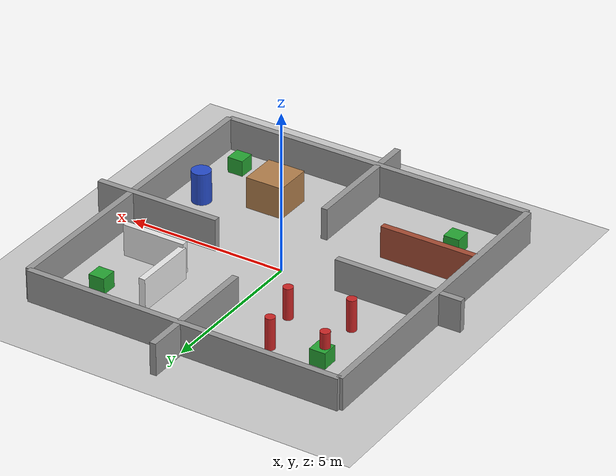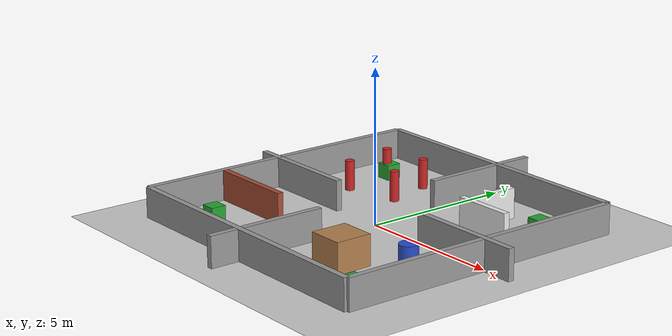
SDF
<sdf version="1.7">
 <world name="four_rooms_world_complex">
  <light name="sun" type="directional">
   <pose>0 0 10 0 -0 0</pose>
   <diffuse>0.8 0.8 0.8 1</diffuse>
   <specular>0.2 0.2 0.2 1</specular>
   <attenuation>
    <range>1000</range>
    <constant>0.9</constant>
    <linear>0.01</linear>
    <quadratic>0.001</quadratic>
   </attenuation>
   <direction>-0.5 0.1 -0.9</direction>
   <spot><inner_angle>0</inner_angle><outer_angle>0</outer_angle><falloff>0</falloff></spot>
  </light>
  <model name="ground_plane">
   <static>1</static>
   <link name="link">
    <collision name="collision">
     <geometry><plane><normal>0 0 1</normal><size>100 100</size></plane></geometry>
     <surface><friction><ode><mu>100</mu><mu2>50</mu2></ode></friction></surface>
    </collision>
    <visual name="visual">
     <cast_shadows>0</cast_shadows>
     <geometry><plane><normal>0 0 1</normal><size>100 100</size></plane></geometry>
     <material>
      <script><uri>file://media/materials/scripts/gazebo.material</uri><name>Gazebo/Grey</name></script>
     </material>
    </visual>
   </link>
  </model>
  <model name="wall_top">
   <static>1</static>
   <pose>0 5 0.5 0 -0 0</pose>
   <link name="link">
    <collision name="c"><geometry><box><size>10 0.2 1</size></box></geometry></collision>
    <visual name="v">
     <geometry><box><size>10 0.2 1</size></box></geometry>
     <material>
      <script><uri>file://media/materials/scripts/gazebo.material</uri><name>Gazebo/Grey</name></script>
     </material>
    </visual>
   </link>
  </model>
  <model name="wall_bottom">
   <static>1</static>
   <pose>0 -5 0.5 0 -0 0</pose>
   <link name="link">
    <collision name="c"><geometry><box><size>10 0.2 1</size></box></geometry></collision>
    <visual name="v">
     <geometry><box><size>10 0.2 1</size></box></geometry>
     <material>
      <script><uri>file://media/materials/scripts/gazebo.material</uri><name>Gazebo/Grey</name></script>
     </material>
    </visual>
   </link>
  </model>
  <model name="wall_left">
   <static>1</static>
   <pose>-5 0 0.5 0 -0 0</pose>
   <link name="link">
    <collision name="c"><geometry><box><size>0.2 10 1</size></box></geometry></collision>
    <visual name="v">
     <geometry><box><size>0.2 10 1</size></box></geometry>
     <material>
      <script><uri>file://media/materials/scripts/gazebo.material</uri><name>Gazebo/Grey</name></script>
     </material>
    </visual>
   </link>
  </model>
  <model name="wall_right">
   <static>1</static>
   <pose>5 0 0.5 0 -0 0</pose>
   <link name="link">
    <collision name="c"><geometry><box><size>0.2 10 1</size></box></geometry></collision>
    <visual name="v">
     <geometry><box><size>0.2 10 1</size></box></geometry>
     <material>
      <script><uri>file://media/materials/scripts/gazebo.material</uri><name>Gazebo/Grey</name></script>
     </material>
    </visual>
   </link>
  </model>
  <model name="wall_inner_top">
   <static>1</static>
   <pose>0.036173 4.26672 0.5 0 -0 0</pose>
   <link name="link">
    <collision name="c"><geometry><box><size>0.2 4 1</size></box></geometry></collision>
    <visual name="v">
     <geometry><box><size>0.2 4 1</size></box></geometry>
     <material>
      <script><uri>file://media/materials/scripts/gazebo.material</uri><name>Gazebo/Grey</name></script>
     </material>
    </visual>
   </link>
  </model>
  <model name="wall_inner_bottom">
   <static>1</static>
   <pose>-0.101206 -4.05871 0.5 0 -0 0</pose>
   <link name="link">
    <collision name="c"><geometry><box><size>0.2 4 1</size></box></geometry></collision>
    <visual name="v">
     <geometry><box><size>0.2 4 1</size></box></geometry>
     <material>
      <script><uri>file://media/materials/scripts/gazebo.material</uri><name>Gazebo/Grey</name></script>
     </material>
    </visual>
   </link>
  </model>
  <model name="wall_inner_left">
   <static>1</static>
   <pose>-3.78806 -0.023325 0.5 0 -0 0</pose>
   <link name="link">
    <collision name="c"><geometry><box><size>4 0.2 1</size></box></geometry></collision>
    <visual name="v">
     <geometry><box><size>4 0.2 1</size></box></geometry>
     <material>
      <script><uri>file://media/materials/scripts/gazebo.material</uri><name>Gazebo/Grey</name></script>
     </material>
    </visual>
   </link>
  </model>
  <model name="wall_inner_right">
   <static>1</static>
   <pose>4.12402 0.017498 0.5 0 -0 0</pose>
   <link name="link">
    <collision name="c"><geometry><box><size>4 0.2 1</size></box></geometry></collision>
    <visual name="v">
     <geometry><box><size>4 0.2 1</size></box></geometry>
     <material>
      <script><uri>file://media/materials/scripts/gazebo.material</uri><name>Gazebo/Grey</name></script>
     </material>
    </visual>
   </link>
  </model>
  <model name="r1_wall_h">
   <static>1</static>
   <pose>3.05059 1.73046 0.612747 0 -0 0</pose>
   <link name="link">
    <collision name="c"><geometry><box><size>2 0.2 1</size></box></geometry></collision>
    <visual name="v">
     <geometry><box><size>2 0.2 1</size></box></geometry>
     <material>
      <script><uri>file://media/materials/scripts/gazebo.material</uri><name>Gazebo/White</name></script>
     </material>
    </visual>
   </link>
  </model>
  <model name="r1_wall_v">
   <static>1</static>
   <pose>2.09659 2.76792 0.5 0 -0 0</pose>
   <link name="link">
    <collision name="c"><geometry><box><size>0.2 2 1</size></box></geometry></collision>
    <visual name="v">
     <geometry><box><size>0.2 2 1</size></box></geometry>
     <material>
      <script><uri>file://media/materials/scripts/gazebo.material</uri><name>Gazebo/White</name></script>
     </material>
    </visual>
   </link>
  </model>
  <model name="r2_p1">
   <static>1</static>
   <pose>-1.46298 1.95174 0.5 0 -0 0</pose>
   <link name="link">
    <collision name="c">
     <geometry><cylinder><radius>0.15</radius><length>1</length></cylinder></geometry>
    </collision>
    <visual name="v">
     <geometry><cylinder><radius>0.15</radius><length>1</length></cylinder></geometry>
     <material>
      <script><uri>file://media/materials/scripts/gazebo.material</uri><name>Gazebo/Red</name></script>
     </material>
    </visual>
   </link>
  </model>
  <model name="r2_p2">
   <static>1</static>
   <pose>-3.23404 1.53275 0.5 0 -0 0</pose>
   <link name="link">
    <collision name="c">
     <geometry><cylinder><radius>0.15</radius><length>1</length></cylinder></geometry>
    </collision>
    <visual name="v">
     <geometry><cylinder><radius>0.15</radius><length>1</length></cylinder></geometry>
     <material>
      <script><uri>file://media/materials/scripts/gazebo.material</uri><name>Gazebo/Red</name></script>
     </material>
    </visual>
   </link>
  </model>
  <model name="r2_p3">
   <static>1</static>
   <pose>-1.86869 3.48574 0.5 0 -0 0</pose>
   <link name="link">
    <collision name="c">
     <geometry><cylinder><radius>0.15</radius><length>1</length></cylinder></geometry>
    </collision>
    <visual name="v">
     <geometry><cylinder><radius>0.15</radius><length>1</length></cylinder></geometry>
     <material>
      <script><uri>file://media/materials/scripts/gazebo.material</uri><name>Gazebo/Red</name></script>
     </material>
    </visual>
   </link>
  </model>
  <model name="r2_p4">
   <static>1</static>
   <pose>-3.49329 3.29561 0.5 0 -0 0</pose>
   <link name="link">
    <collision name="c">
     <geometry><cylinder><radius>0.15</radius><length>1</length></cylinder></geometry>
    </collision>
    <visual name="v">
     <geometry><cylinder><radius>0.15</radius><length>1</length></cylinder></geometry>
     <material>
      <script><uri>file://media/materials/scripts/gazebo.material</uri><name>Gazebo/Red</name></script>
     </material>
    </visual>
   </link>
  </model>
  <model name="r3_long_wall">
   <static>1</static>
   <pose>-3.43241 -2.19183 0.5 0 -0 0</pose>
   <link name="link">
    <collision name="c"><geometry><box><size>3 0.2 1</size></box></geometry></collision>
    <visual name="v">
     <geometry><box><size>3 0.2 1</size></box></geometry>
     <material>
      <script><uri>file://media/materials/scripts/gazebo.material</uri><name>Gazebo/Bricks</name></script>
     </material>
    </visual>
   </link>
  </model>
  <model name="r4_box">
   <static>1</static>
   <pose>2.09266 -2.94208 0.5 0 -0 0</pose>
   <link name="link">
    <collision name="c"><geometry><box><size>1.2 1.2 1</size></box></geometry></collision>
    <visual name="v">
     <geometry><box><size>1.2 1.2 1</size></box></geometry>
     <material>
      <script><uri>file://media/materials/scripts/gazebo.material</uri><name>Gazebo/Wood</name></script>
     </material>
    </visual>
   </link>
  </model>
  <model name="r4_cylinder">
   <static>1</static>
   <pose>4 -2 0.5 0 -0 0</pose>
   <link name="link">
    <collision name="c">
     <geometry><cylinder><radius>0.3</radius><length>1</length></cylinder></geometry>
    </collision>
    <visual name="v">
     <geometry><cylinder><radius>0.3</radius><length>1</length></cylinder></geometry>
     <material>
      <script><uri>file://media/materials/scripts/gazebo.material</uri><name>Gazebo/Blue</name></script>
     </material>
    </visual>
   </link>
  </model>
  <model name="green_box_1">
   <static>1</static>
   <pose>3.68133 3.43962 0.25 0 -0 0</pose>
   <link name="link">
    <collision name="c"><geometry><box><size>0.5 0.5 0.5</size></box></geometry></collision>
    <visual name="v">
     <geometry><box><size>0.5 0.5 0.5</size></box></geometry>
     <material>
      <script><uri>file://media/materials/scripts/gazebo.material</uri><name>Gazebo/Green</name></script>
     </material>
    </visual>
   </link>
  </model>
  <model name="green_box_2">
   <static>1</static>
   <pose>-3.42622 3.34029 0.25 0 -0 0</pose>
   <link name="link">
    <collision name="c"><geometry><box><size>0.5 0.5 0.5</size></box></geometry></collision>
    <visual name="v">
     <geometry><box><size>0.5 0.5 0.5</size></box></geometry>
     <material>
      <script><uri>file://media/materials/scripts/gazebo.material</uri><name>Gazebo/Green</name></script>
     </material>
    </visual>
   </link>
  </model>
  <model name="green_box_3">
   <static>1</static>
   <pose>-3.48883 -3.59723 0.25 0 -0 0</pose>
   <link name="link">
    <collision name="c"><geometry><box><size>0.5 0.5 0.5</size></box></geometry></collision>
    <visual name="v">
     <geometry><box><size>0.5 0.5 0.5</size></box></geometry>
     <material>
      <script><uri>file://media/materials/scripts/gazebo.material</uri><name>Gazebo/Green</name></script>
     </material>
    </visual>
   </link>
  </model>
  <model name="green_box_4">
   <static>1</static>
   <pose>4 -4 0.25 0 -0 0</pose>
   <link name="link">
    <collision name="c"><geometry><box><size>0.5 0.5 0.5</size></box></geometry></collision>
    <visual name="v">
     <geometry><box><size>0.5 0.5 0.5</size></box></geometry>
     <material>
      <script><uri>file://media/materials/scripts/gazebo.material</uri><name>Gazebo/Green</name></script>
     </material>
    </visual>
   </link>
  </model>
  <gravity>0 0 -9.8</gravity>
  <magnetic_field>6e-06 2.3e-05 -4.2e-05</magnetic_field>
  <atmosphere type="adiabatic"/>
  <physics type="ode">
   <max_step_size>0.001</max_step_size>
   <real_time_factor>1</real_time_factor>
   <real_time_update_rate>1000</real_time_update_rate>
  </physics>
  <scene><ambient>0.4 0.4 0.4 1</ambient><background>0.7 0.7 0.7 1</background><shadows>1</shadows></scene>
  <spherical_coordinates>
   <surface_model>EARTH_WGS84</surface_model>
   <latitude_deg>0</latitude_deg>
   <longitude_deg>0</longitude_deg>
   <elevation>0</elevation>
   <heading_deg>0</heading_deg>
  </spherical_coordinates>
 </world>
</sdf>
